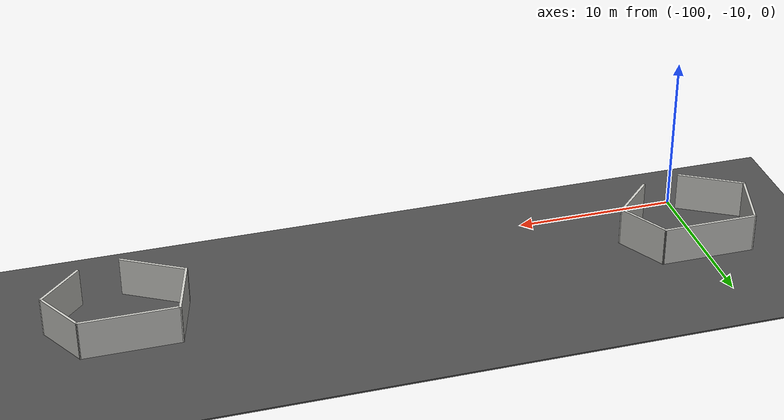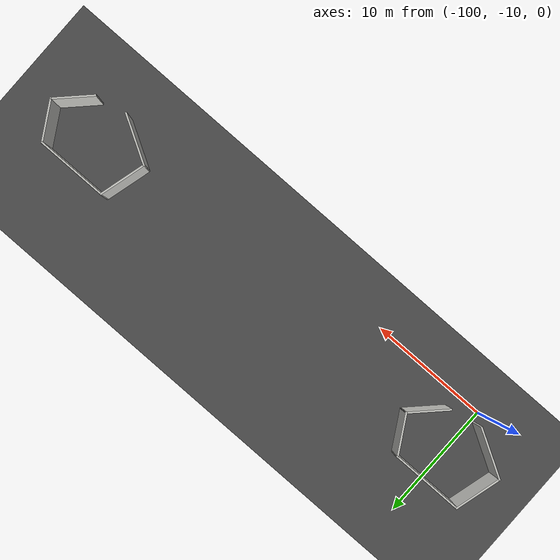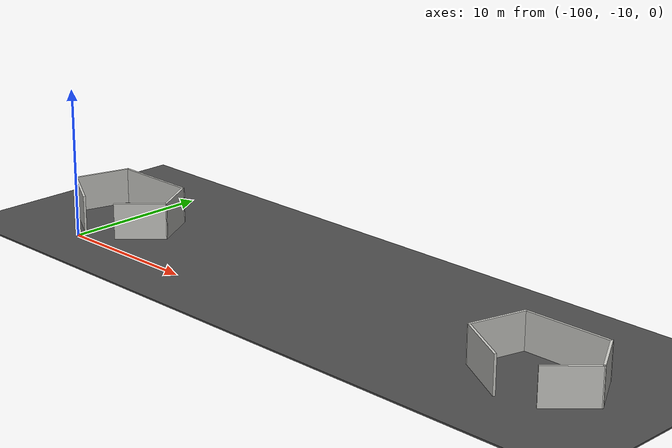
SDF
<sdf version="1.6">
 <world name="default">
  <model name="ground_plane">
   <static>1</static>
   <link name="link">
    <collision name="collision">
     <geometry><plane><normal>0 0 1</normal><size>250 250</size></plane></geometry>
     <surface><friction><ode><mu>100</mu><mu2>50</mu2></ode></friction></surface>
    </collision>
    <visual name="visual">
     <cast_shadows>0</cast_shadows>
     <geometry><plane><normal>0 0 1</normal><size>250 250</size></plane></geometry>
     <material>
      <script><uri>file://media/materials/scripts/gazebo.material</uri><name>Gazebo/Grey</name></script>
     </material>
    </visual>
   </link>
  </model>
  <model name="concrete_room">
   <pose>-64.1032 -6.51639 0 0 -0 0</pose>
   <link name="Wall_54">
    <collision name="Wall_54_Collision">
     <geometry><box><size>4.25 0.15 2.5</size></box></geometry>
     <pose>0 0 1.25 0 -0 0</pose>
    </collision>
    <visual name="Wall_54_Visual">
     <pose>0 0 1.25 0 -0 0</pose>
     <geometry><box><size>4.25 0.15 2.5</size></box></geometry>
     <material>
      <script><uri>file://media/materials/scripts/gazebo.material</uri><name>Gazebo/CeilingTiled</name></script>
      <ambient>1 1 1 1</ambient>
     </material>
     <meta><layer>0</layer></meta>
    </visual>
    <pose>-2.48718 -1.85941 0 0 -0 2.61799</pose>
   </link>
   <link name="Wall_55">
    <collision name="Wall_55_Collision">
     <geometry><box><size>4 0.15 2.5</size></box></geometry>
     <pose>0 0 1.25 0 -0 0</pose>
    </collision>
    <visual name="Wall_55_Visual">
     <pose>0 0 1.25 0 -0 0</pose>
     <geometry><box><size>4 0.15 2.5</size></box></geometry>
     <material>
      <script><uri>file://media/materials/scripts/gazebo.material</uri><name>Gazebo/CeilingTiled</name></script>
      <ambient>1 1 1 1</ambient>
     </material>
     <meta><layer>0</layer></meta>
    </visual>
    <pose>-3.76431 1.025 0 0 -0 1.309</pose>
   </link>
   <link name="Wall_56">
    <collision name="Wall_56_Collision">
     <geometry><box><size>6 0.15 2.5</size></box></geometry>
     <pose>0 0 1.25 0 -0 0</pose>
    </collision>
    <visual name="Wall_56_Visual">
     <pose>0 0 1.25 0 -0 0</pose>
     <geometry><box><size>6 0.15 2.5</size></box></geometry>
     <material>
      <script><uri>file://media/materials/scripts/gazebo.material</uri><name>Gazebo/CeilingTiled</name></script>
      <ambient>1 1 1 1</ambient>
     </material>
     <meta><layer>0</layer></meta>
    </visual>
    <pose>-0.34108 2.88441 0 0 -0 0</pose>
   </link>
   <link name="Wall_57">
    <collision name="Wall_57_Collision">
     <geometry><box><size>3.5 0.15 2.5</size></box></geometry>
     <pose>0 0 1.25 0 -0 0</pose>
    </collision>
    <visual name="Wall_57_Visual">
     <pose>0 0 1.25 0 -0 0</pose>
     <geometry><box><size>3.5 0.15 2.5</size></box></geometry>
     <material>
      <script><uri>file://media/materials/scripts/gazebo.material</uri><name>Gazebo/CeilingTiled</name></script>
      <ambient>1 1 1 1</ambient>
     </material>
     <meta><layer>0</layer></meta>
    </visual>
    <pose>3.42142 1.43382 0 0 0 -1.0472</pose>
   </link>
   <link name="Wall_58">
    <collision name="Wall_58_Collision">
     <geometry><box><size>3.5 0.15 2.5</size></box></geometry>
     <pose>0 0 1.25 0 -0 0</pose>
    </collision>
    <visual name="Wall_58_Visual">
     <pose>0 0 1.25 0 -0 0</pose>
     <geometry><box><size>3.5 0.15 2.5</size></box></geometry>
     <material>
      <script><uri>file://media/materials/scripts/gazebo.material</uri><name>Gazebo/CeilingTiled</name></script>
      <ambient>1 1 1 1</ambient>
     </material>
     <meta><layer>0</layer></meta>
    </visual>
    <pose>3.07452 -1.20118 0 0 0 -2.35619</pose>
   </link>
   <static>1</static>
  </model>
  <model name="asphalt_plane">
   <static>1</static>
   <link name="link">
    <collision name="collision"><geometry><box><size>250 250 0.1</size></box></geometry></collision>
    <visual name="visual">
     <cast_shadows>0</cast_shadows>
     <geometry><box><size>250 250 0.1</size></box></geometry>
     <material>
      <script>
       <uri>model://asphalt_plane/materials/scripts</uri>
       <uri>model://asphalt_plane/materials/textures</uri>
       <name>vrc/asphalt</name>
      </script>
     </material>
    </visual>
   </link>
   <pose>15.141 -2.59476 0 0 -0 0</pose>
  </model>
  <model name="concrete_room_clone">
   <pose>-99.5408 -6.32274 0 0 -0 0</pose>
   <link name="Wall_54">
    <collision name="Wall_54_Collision">
     <geometry><box><size>4.25 0.15 2.5</size></box></geometry>
     <pose>0 0 1.25 0 -0 0</pose>
    </collision>
    <visual name="Wall_54_Visual">
     <pose>0 0 1.25 0 -0 0</pose>
     <geometry><box><size>4.25 0.15 2.5</size></box></geometry>
     <material>
      <script><uri>file://media/materials/scripts/gazebo.material</uri><name>Gazebo/CeilingTiled</name></script>
      <ambient>1 1 1 1</ambient>
     </material>
     <meta><layer>0</layer></meta>
    </visual>
    <pose>-2.48718 -1.85941 0 0 -0 2.61799</pose>
   </link>
   <link name="Wall_55">
    <collision name="Wall_55_Collision">
     <geometry><box><size>4 0.15 2.5</size></box></geometry>
     <pose>0 0 1.25 0 -0 0</pose>
    </collision>
    <visual name="Wall_55_Visual">
     <pose>0 0 1.25 0 -0 0</pose>
     <geometry><box><size>4 0.15 2.5</size></box></geometry>
     <material>
      <script><uri>file://media/materials/scripts/gazebo.material</uri><name>Gazebo/CeilingTiled</name></script>
      <ambient>1 1 1 1</ambient>
     </material>
     <meta><layer>0</layer></meta>
    </visual>
    <pose>-3.76431 1.025 0 0 -0 1.309</pose>
   </link>
   <link name="Wall_56">
    <collision name="Wall_56_Collision">
     <geometry><box><size>6 0.15 2.5</size></box></geometry>
     <pose>0 0 1.25 0 -0 0</pose>
    </collision>
    <visual name="Wall_56_Visual">
     <pose>0 0 1.25 0 -0 0</pose>
     <geometry><box><size>6 0.15 2.5</size></box></geometry>
     <material>
      <script><uri>file://media/materials/scripts/gazebo.material</uri><name>Gazebo/CeilingTiled</name></script>
      <ambient>1 1 1 1</ambient>
     </material>
     <meta><layer>0</layer></meta>
    </visual>
    <pose>-0.34108 2.88441 0 0 -0 0</pose>
   </link>
   <link name="Wall_57">
    <collision name="Wall_57_Collision">
     <geometry><box><size>3.5 0.15 2.5</size></box></geometry>
     <pose>0 0 1.25 0 -0 0</pose>
    </collision>
    <visual name="Wall_57_Visual">
     <pose>0 0 1.25 0 -0 0</pose>
     <geometry><box><size>3.5 0.15 2.5</size></box></geometry>
     <material>
      <script><uri>file://media/materials/scripts/gazebo.material</uri><name>Gazebo/CeilingTiled</name></script>
      <ambient>1 1 1 1</ambient>
     </material>
     <meta><layer>0</layer></meta>
    </visual>
    <pose>3.42142 1.43382 0 0 0 -1.0472</pose>
   </link>
   <link name="Wall_58">
    <collision name="Wall_58_Collision">
     <geometry><box><size>3.5 0.15 2.5</size></box></geometry>
     <pose>0 0 1.25 0 -0 0</pose>
    </collision>
    <visual name="Wall_58_Visual">
     <pose>0 0 1.25 0 -0 0</pose>
     <geometry><box><size>3.5 0.15 2.5</size></box></geometry>
     <material>
      <script><uri>file://media/materials/scripts/gazebo.material</uri><name>Gazebo/CeilingTiled</name></script>
      <ambient>1 1 1 1</ambient>
     </material>
     <meta><layer>0</layer></meta>
    </visual>
    <pose>3.07452 -1.20118 0 0 0 -2.35619</pose>
   </link>
   <static>1</static>
  </model>
 </world>
</sdf>
